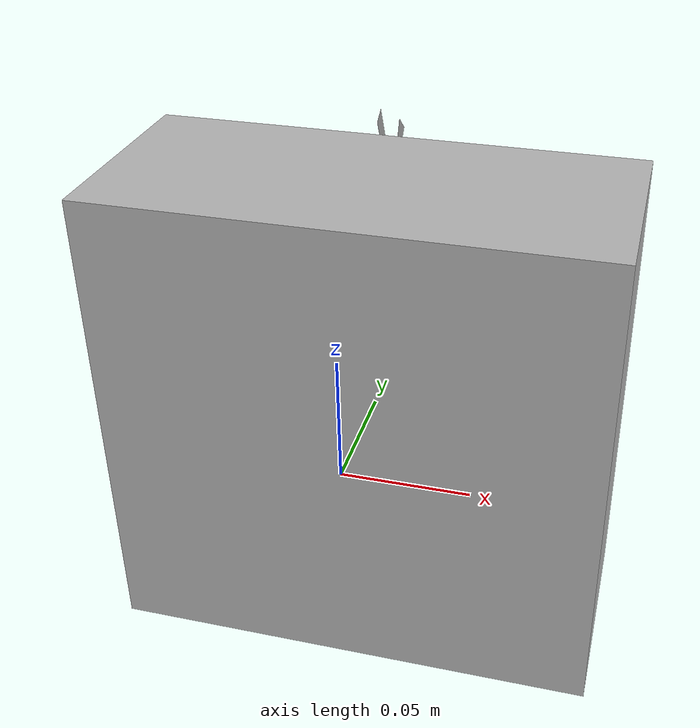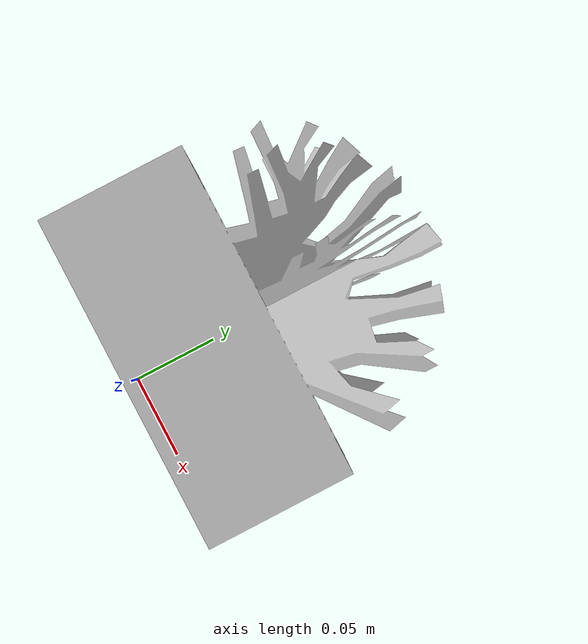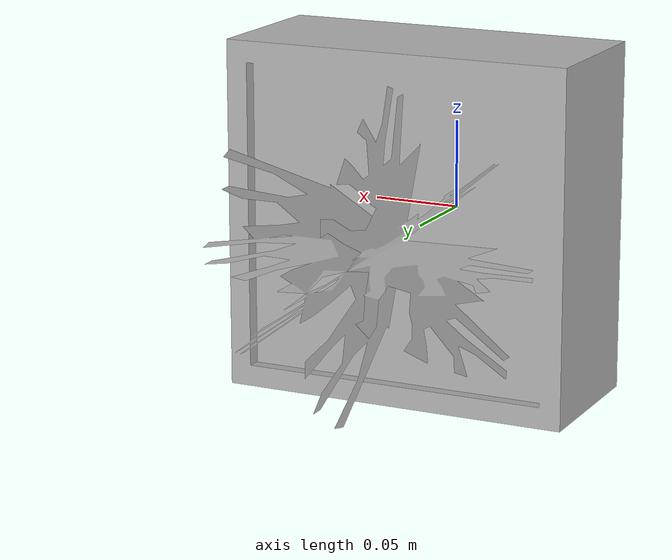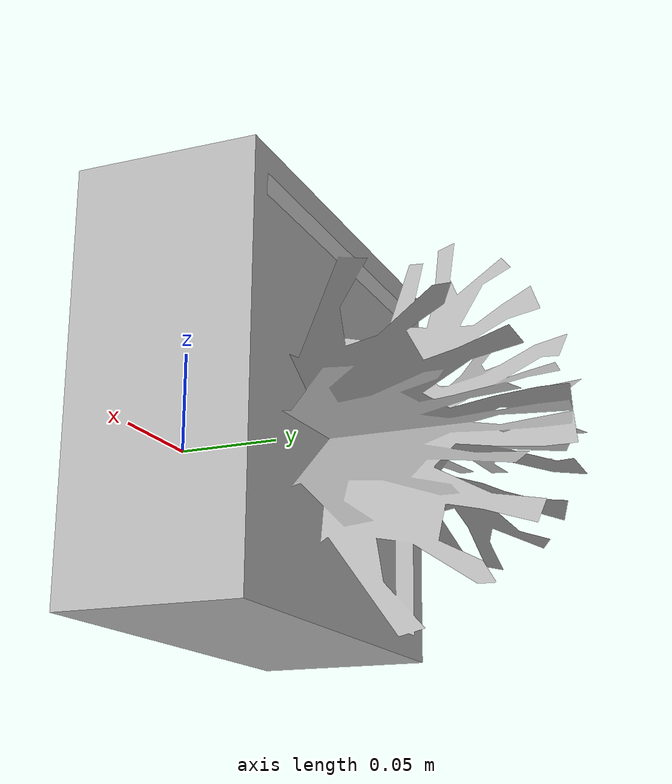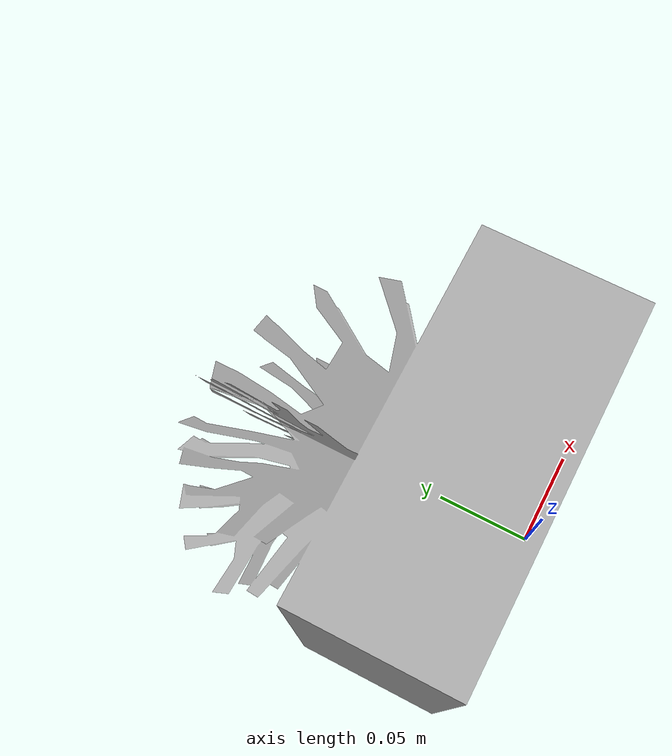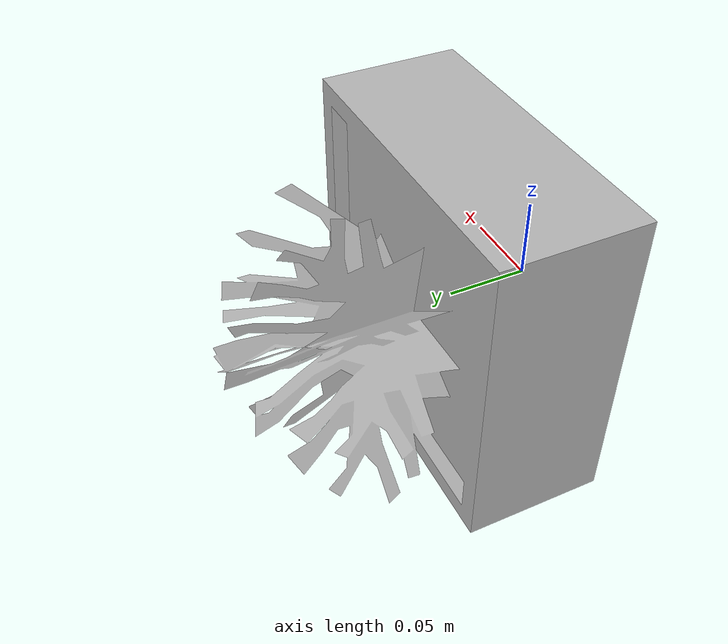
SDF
<?xml version="1.0" ?>
<sdf version="1.4">
  <model name="shelf3_plant3_1">
    <link name="body">
      <pose>0 0 0 0 0 0</pose>
      <inertial>
        <pose>  -0.000577   0.059156   0.003126 0 0 0</pose>
        <mass>0.5</mass>
        <inertia>
          <ixx>0.01</ixx>
          <ixy>0</ixy>
          <ixz>0</ixz>
          <iyy>0.01</iyy>
          <iyz>0</iyz>
          <izz>0.01</izz>
        </inertia>
      </inertial>
      <collision name="collision">
        <geometry>
          <mesh>
            <uri>model://bookshelf/shelf3_items/plant3_1/plant3_1.dae</uri>
          </mesh>
        </geometry>
      </collision>
      <visual name="visual">
        <geometry>
          <mesh>
            <uri>model://bookshelf/shelf3_items/plant3_1/plant3_1.dae</uri>
          </mesh>
        </geometry>
      </visual>
    </link>
  </model>
</sdf>
